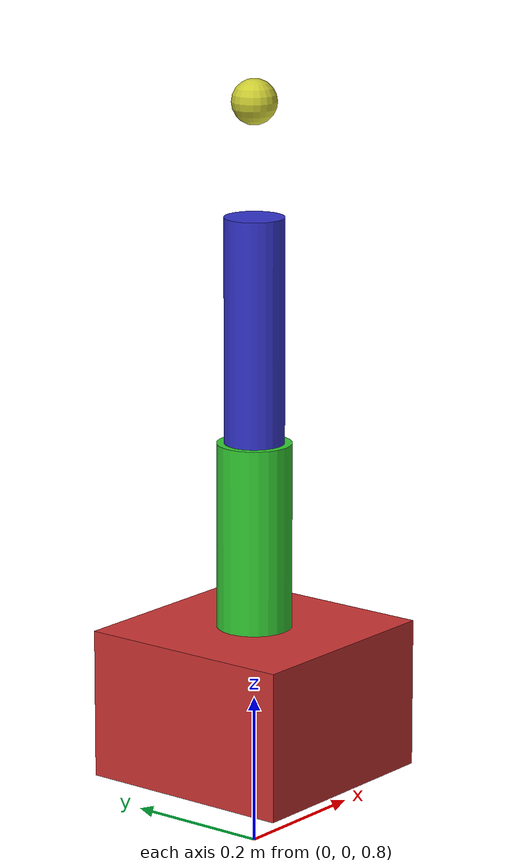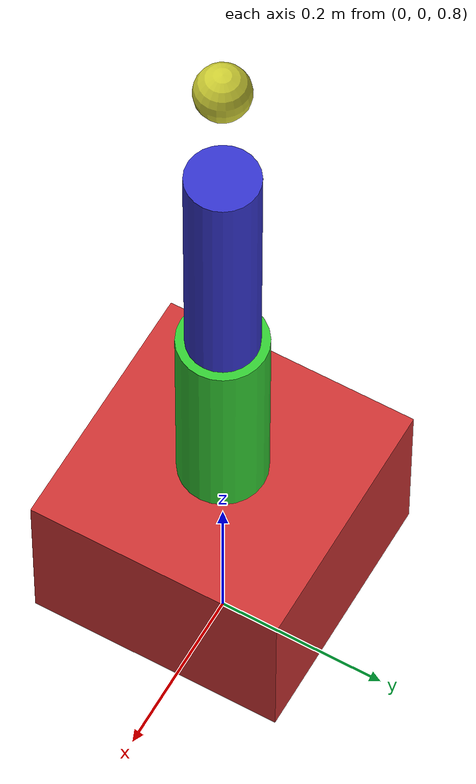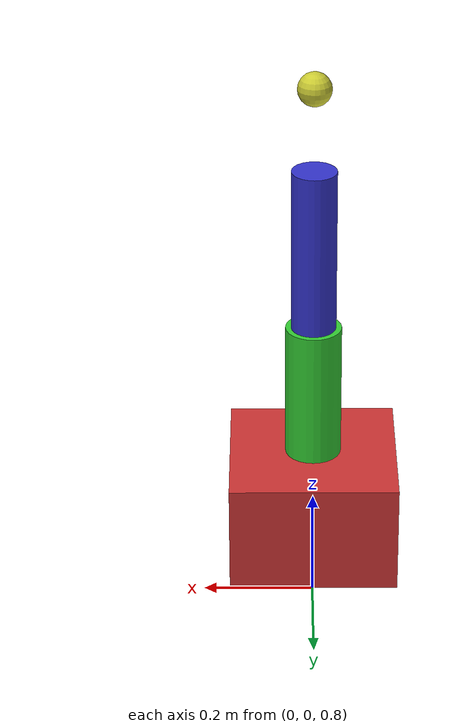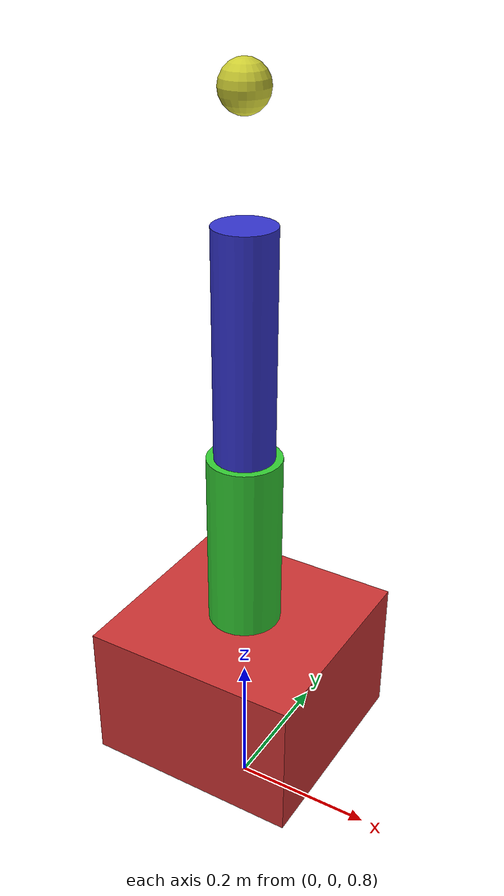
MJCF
<mujoco model="floating_robot">
  <compiler angle="radian" autolimits="true"/>

  <default>
    <joint damping="0.1" armature="0.01"/>
    <geom contype="1" conaffinity="1" friction="0.7 0.1 0.1"/>
  </default>

  <worldbody>
    <!-- Floating base -->
    <body name="base" pos="0 0 1">
      <freejoint name="base_joint"/>
      <geom name="base_geom" type="box" size="0.15 0.15 0.1" rgba="0.8 0.2 0.2 1"/>

      <!-- Link 1 -->
      <body name="link1" pos="0 0 0.2">
        <joint name="joint1" type="hinge" axis="0 0 1" range="-3.14 3.14"/>
        <geom name="link1_geom" type="cylinder" size="0.05 0.15" rgba="0.2 0.8 0.2 1"/>

        <!-- Link 2 -->
        <body name="link2" pos="0 0 0.3">
          <joint name="joint2" type="hinge" axis="0 1 0" range="-1.57 1.57"/>
          <geom name="link2_geom" type="cylinder" size="0.04 0.15" rgba="0.2 0.2 0.8 1"/>

          <!-- End-effector link -->
          <body name="ee_link" pos="0 0 0.3">
            <joint name="joint3" type="hinge" axis="1 0 0" range="-1.57 1.57"/>
            <geom name="ee_geom" type="sphere" size="0.03" rgba="0.8 0.8 0.2 1"/>
          </body>
        </body>
      </body>
    </body>
  </worldbody>
</mujoco>
